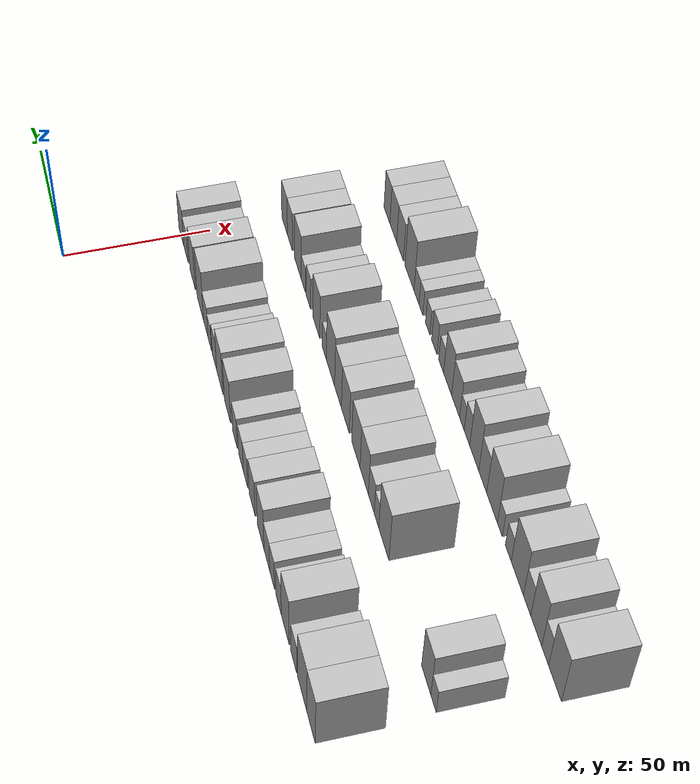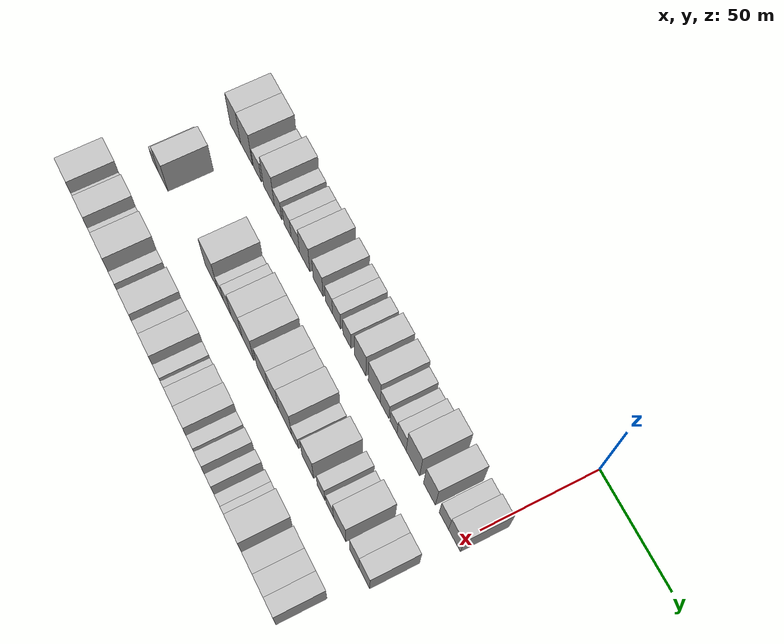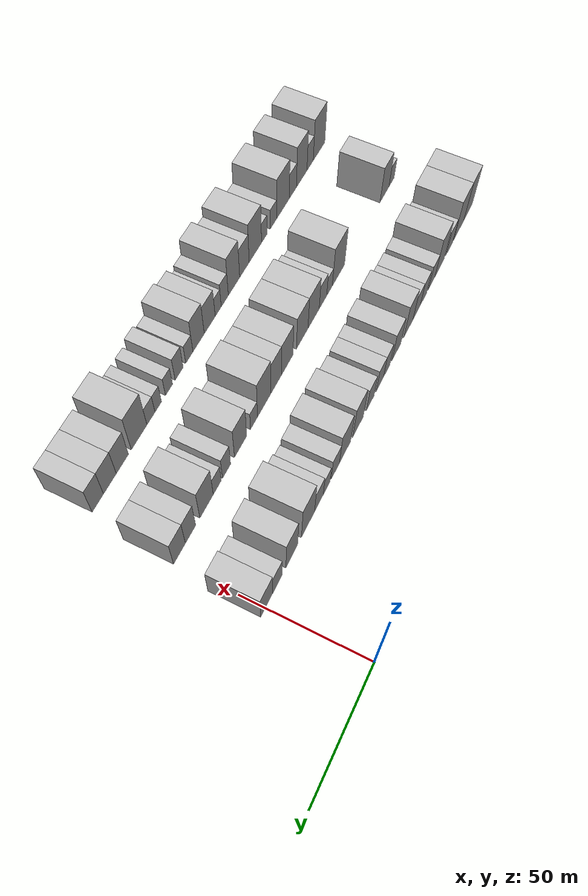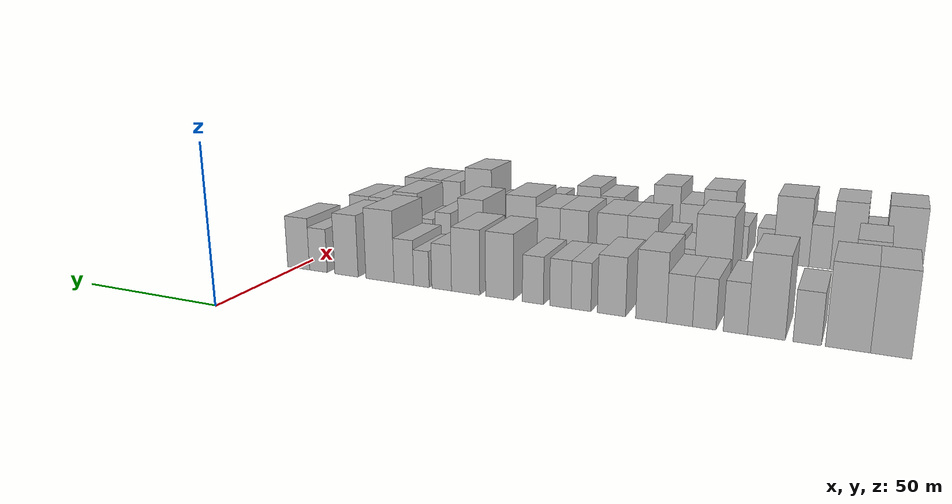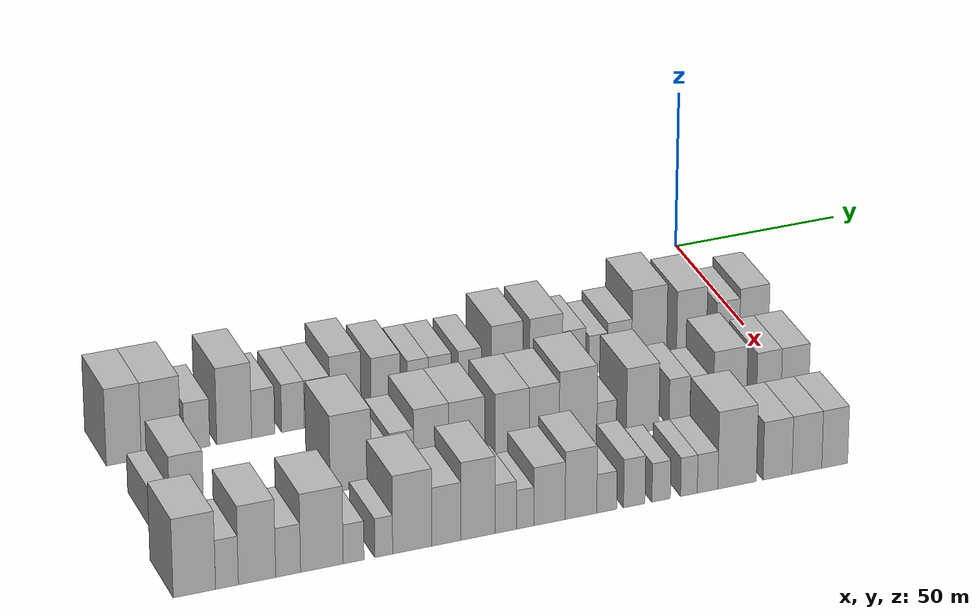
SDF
<sdf version="1.6">
 <world name="default">
  <model name="building_21">
   <static>1</static>
   <pose>50.0000 -187.3796 0 0.000000 0.000000 0.000000</pose>
   <link name="link">
    <pose>0 0 12.00 0 0 0</pose>
    <collision name="collision"><geometry><box><size>20.0000 9.9799 24.0000</size></box></geometry></collision>
    <visual name="visual">
     <cast_shadows>0</cast_shadows>
     <geometry><box><size>20.0000 9.9799 24.0000</size></box></geometry>
     <material>
      <script>
       <uri>model://HANNAS_wall/materials/scripts</uri>
       <uri>model://HANNAS_wall/materials/textures</uri>
       <name>vrc/HANNAS_wall</name>
      </script>
     </material>
    </visual>
   </link>
  </model>
  <model name="building_22">
   <static>1</static>
   <pose>50.0000 -176.7618 0 0.000000 0.000000 0.000000</pose>
   <link name="link">
    <pose>0 0 12.00 0 0 0</pose>
    <collision name="collision"><geometry><box><size>20.0000 11.2558 24.0000</size></box></geometry></collision>
    <visual name="visual">
     <cast_shadows>0</cast_shadows>
     <geometry><box><size>20.0000 11.2558 24.0000</size></box></geometry>
     <material>
      <script>
       <uri>model://HANNAS_wall/materials/scripts</uri>
       <uri>model://HANNAS_wall/materials/textures</uri>
       <name>vrc/HANNAS_wall</name>
      </script>
     </material>
    </visual>
   </link>
  </model>
  <model name="building_23">
   <static>1</static>
   <pose>50.0000 -166.4585 0 0.000000 0.000000 0.000000</pose>
   <link name="link">
    <pose>0 0 7.50 0 0 0</pose>
    <collision name="collision"><geometry><box><size>20.0000 7.3508 15.0000</size></box></geometry></collision>
    <visual name="visual">
     <cast_shadows>0</cast_shadows>
     <geometry><box><size>20.0000 7.3508 15.0000</size></box></geometry>
     <material>
      <script>
       <uri>model://HANNAS_wall/materials/scripts</uri>
       <uri>model://HANNAS_wall/materials/textures</uri>
       <name>vrc/HANNAS_wall</name>
      </script>
     </material>
    </visual>
   </link>
  </model>
  <model name="building_24">
   <static>1</static>
   <pose>50.0000 -155.7523 0 0.000000 0.000000 0.000000</pose>
   <link name="link">
    <pose>0 0 12.00 0 0 0</pose>
    <collision name="collision"><geometry><box><size>20.0000 10.0615 24.0000</size></box></geometry></collision>
    <visual name="visual">
     <cast_shadows>0</cast_shadows>
     <geometry><box><size>20.0000 10.0615 24.0000</size></box></geometry>
     <material>
      <script>
       <uri>model://HANNAS_wall/materials/scripts</uri>
       <uri>model://HANNAS_wall/materials/textures</uri>
       <name>vrc/HANNAS_wall</name>
      </script>
     </material>
    </visual>
   </link>
  </model>
  <model name="building_25">
   <static>1</static>
   <pose>50.0000 -147.3862 0 0.000000 0.000000 0.000000</pose>
   <link name="link">
    <pose>0 0 7.50 0 0 0</pose>
    <collision name="collision"><geometry><box><size>20.0000 6.6707 15.0000</size></box></geometry></collision>
    <visual name="visual">
     <cast_shadows>0</cast_shadows>
     <geometry><box><size>20.0000 6.6707 15.0000</size></box></geometry>
     <material>
      <script>
       <uri>model://HANNAS_wall/materials/scripts</uri>
       <uri>model://HANNAS_wall/materials/textures</uri>
       <name>vrc/HANNAS_wall</name>
      </script>
     </material>
    </visual>
   </link>
  </model>
  <model name="building_26">
   <static>1</static>
   <pose>50.0000 -138.7556 0 0.000000 0.000000 0.000000</pose>
   <link name="link">
    <pose>0 0 7.50 0 0 0</pose>
    <collision name="collision"><geometry><box><size>20.0000 6.5905 15.0000</size></box></geometry></collision>
    <visual name="visual">
     <cast_shadows>0</cast_shadows>
     <geometry><box><size>20.0000 6.5905 15.0000</size></box></geometry>
     <material>
      <script>
       <uri>model://HANNAS_wall/materials/scripts</uri>
       <uri>model://HANNAS_wall/materials/textures</uri>
       <name>vrc/HANNAS_wall</name>
      </script>
     </material>
    </visual>
   </link>
  </model>
  <model name="building_27">
   <static>1</static>
   <pose>50.0000 -131.7457 0 0.000000 0.000000 0.000000</pose>
   <link name="link">
    <pose>0 0 7.50 0 0 0</pose>
    <collision name="collision"><geometry><box><size>20.0000 7.4293 15.0000</size></box></geometry></collision>
    <visual name="visual">
     <cast_shadows>0</cast_shadows>
     <geometry><box><size>20.0000 7.4293 15.0000</size></box></geometry>
     <material>
      <script>
       <uri>model://HANNAS_wall/materials/scripts</uri>
       <uri>model://HANNAS_wall/materials/textures</uri>
       <name>vrc/HANNAS_wall</name>
      </script>
     </material>
    </visual>
   </link>
  </model>
  <model name="building_28">
   <static>1</static>
   <pose>50.0000 -123.4774 0 0.000000 0.000000 0.000000</pose>
   <link name="link">
    <pose>0 0 10.50 0 0 0</pose>
    <collision name="collision"><geometry><box><size>20.0000 9.1073 21.0000</size></box></geometry></collision>
    <visual name="visual">
     <cast_shadows>0</cast_shadows>
     <geometry><box><size>20.0000 9.1073 21.0000</size></box></geometry>
     <material>
      <script>
       <uri>model://HANNAS_wall/materials/scripts</uri>
       <uri>model://HANNAS_wall/materials/textures</uri>
       <name>vrc/HANNAS_wall</name>
      </script>
     </material>
    </visual>
   </link>
  </model>
  <model name="building_29">
   <static>1</static>
   <pose>50.0000 -111.6304 0 0.000000 0.000000 0.000000</pose>
   <link name="link">
    <pose>0 0 9.00 0 0 0</pose>
    <collision name="collision"><geometry><box><size>20.0000 8.5869 18.0000</size></box></geometry></collision>
    <visual name="visual">
     <cast_shadows>0</cast_shadows>
     <geometry><box><size>20.0000 8.5869 18.0000</size></box></geometry>
     <material>
      <script>
       <uri>model://HANNAS_wall/materials/scripts</uri>
       <uri>model://HANNAS_wall/materials/textures</uri>
       <name>vrc/HANNAS_wall</name>
      </script>
     </material>
    </visual>
   </link>
  </model>
  <model name="building_30">
   <static>1</static>
   <pose>50.0000 -102.2345 0 0.000000 0.000000 0.000000</pose>
   <link name="link">
    <pose>0 0 7.50 0 0 0</pose>
    <collision name="collision"><geometry><box><size>20.0000 6.2049 15.0000</size></box></geometry></collision>
    <visual name="visual">
     <cast_shadows>0</cast_shadows>
     <geometry><box><size>20.0000 6.2049 15.0000</size></box></geometry>
     <material>
      <script>
       <uri>model://HANNAS_wall/materials/scripts</uri>
       <uri>model://HANNAS_wall/materials/textures</uri>
       <name>vrc/HANNAS_wall</name>
      </script>
     </material>
    </visual>
   </link>
  </model>
  <model name="building_31">
   <static>1</static>
   <pose>50.0000 -95.7270 0 0.000000 0.000000 0.000000</pose>
   <link name="link">
    <pose>0 0 7.50 0 0 0</pose>
    <collision name="collision"><geometry><box><size>20.0000 6.8102 15.0000</size></box></geometry></collision>
    <visual name="visual">
     <cast_shadows>0</cast_shadows>
     <geometry><box><size>20.0000 6.8102 15.0000</size></box></geometry>
     <material>
      <script>
       <uri>model://HANNAS_wall/materials/scripts</uri>
       <uri>model://HANNAS_wall/materials/textures</uri>
       <name>vrc/HANNAS_wall</name>
      </script>
     </material>
    </visual>
   </link>
  </model>
  <model name="building_32">
   <static>1</static>
   <pose>50.0000 -86.8738 0 0.000000 0.000000 0.000000</pose>
   <link name="link">
    <pose>0 0 7.50 0 0 0</pose>
    <collision name="collision"><geometry><box><size>20.0000 6.8960 15.0000</size></box></geometry></collision>
    <visual name="visual">
     <cast_shadows>0</cast_shadows>
     <geometry><box><size>20.0000 6.8960 15.0000</size></box></geometry>
     <material>
      <script>
       <uri>model://HANNAS_wall/materials/scripts</uri>
       <uri>model://HANNAS_wall/materials/textures</uri>
       <name>vrc/HANNAS_wall</name>
      </script>
     </material>
    </visual>
   </link>
  </model>
  <model name="building_33">
   <static>1</static>
   <pose>50.0000 -75.7585 0 0.000000 0.000000 0.000000</pose>
   <link name="link">
    <pose>0 0 10.50 0 0 0</pose>
    <collision name="collision"><geometry><box><size>20.0000 9.3346 21.0000</size></box></geometry></collision>
    <visual name="visual">
     <cast_shadows>0</cast_shadows>
     <geometry><box><size>20.0000 9.3346 21.0000</size></box></geometry>
     <material>
      <script>
       <uri>model://HANNAS_wall/materials/scripts</uri>
       <uri>model://HANNAS_wall/materials/textures</uri>
       <name>vrc/HANNAS_wall</name>
      </script>
     </material>
    </visual>
   </link>
  </model>
  <model name="building_34">
   <static>1</static>
   <pose>50.0000 -64.1783 0 0.000000 0.000000 0.000000</pose>
   <link name="link">
    <pose>0 0 10.50 0 0 0</pose>
    <collision name="collision"><geometry><box><size>20.0000 9.8258 21.0000</size></box></geometry></collision>
    <visual name="visual">
     <cast_shadows>0</cast_shadows>
     <geometry><box><size>20.0000 9.8258 21.0000</size></box></geometry>
     <material>
      <script>
       <uri>model://HANNAS_wall/materials/scripts</uri>
       <uri>model://HANNAS_wall/materials/textures</uri>
       <name>vrc/HANNAS_wall</name>
      </script>
     </material>
    </visual>
   </link>
  </model>
  <model name="building_35">
   <static>1</static>
   <pose>50.0000 -55.7700 0 0.000000 0.000000 0.000000</pose>
   <link name="link">
    <pose>0 0 7.50 0 0 0</pose>
    <collision name="collision"><geometry><box><size>20.0000 6.9908 15.0000</size></box></geometry></collision>
    <visual name="visual">
     <cast_shadows>0</cast_shadows>
     <geometry><box><size>20.0000 6.9908 15.0000</size></box></geometry>
     <material>
      <script>
       <uri>model://HANNAS_wall/materials/scripts</uri>
       <uri>model://HANNAS_wall/materials/textures</uri>
       <name>vrc/HANNAS_wall</name>
      </script>
     </material>
    </visual>
   </link>
  </model>
  <model name="building_36">
   <static>1</static>
   <pose>50.0000 -48.4692 0 0.000000 0.000000 0.000000</pose>
   <link name="link">
    <pose>0 0 6.00 0 0 0</pose>
    <collision name="collision"><geometry><box><size>20.0000 5.6107 12.0000</size></box></geometry></collision>
    <visual name="visual">
     <cast_shadows>0</cast_shadows>
     <geometry><box><size>20.0000 5.6107 12.0000</size></box></geometry>
     <material>
      <script>
       <uri>model://HANNAS_wall/materials/scripts</uri>
       <uri>model://HANNAS_wall/materials/textures</uri>
       <name>vrc/HANNAS_wall</name>
      </script>
     </material>
    </visual>
   </link>
  </model>
  <model name="building_37">
   <static>1</static>
   <pose>50.0000 -42.0538 0 0.000000 0.000000 0.000000</pose>
   <link name="link">
    <pose>0 0 7.50 0 0 0</pose>
    <collision name="collision"><geometry><box><size>20.0000 7.2201 15.0000</size></box></geometry></collision>
    <visual name="visual">
     <cast_shadows>0</cast_shadows>
     <geometry><box><size>20.0000 7.2201 15.0000</size></box></geometry>
     <material>
      <script>
       <uri>model://HANNAS_wall/materials/scripts</uri>
       <uri>model://HANNAS_wall/materials/textures</uri>
       <name>vrc/HANNAS_wall</name>
      </script>
     </material>
    </visual>
   </link>
  </model>
  <model name="building_38">
   <static>1</static>
   <pose>50.0000 -33.1357 0 0.000000 0.000000 0.000000</pose>
   <link name="link">
    <pose>0 0 12.00 0 0 0</pose>
    <collision name="collision"><geometry><box><size>20.0000 10.6160 24.0000</size></box></geometry></collision>
    <visual name="visual">
     <cast_shadows>0</cast_shadows>
     <geometry><box><size>20.0000 10.6160 24.0000</size></box></geometry>
     <material>
      <script>
       <uri>model://HANNAS_wall/materials/scripts</uri>
       <uri>model://HANNAS_wall/materials/textures</uri>
       <name>vrc/HANNAS_wall</name>
      </script>
     </material>
    </visual>
   </link>
  </model>
  <model name="building_39">
   <static>1</static>
   <pose>50.0000 -20.2615 0 0.000000 0.000000 0.000000</pose>
   <link name="link">
    <pose>0 0 10.50 0 0 0</pose>
    <collision name="collision"><geometry><box><size>20.0000 9.1324 21.0000</size></box></geometry></collision>
    <visual name="visual">
     <cast_shadows>0</cast_shadows>
     <geometry><box><size>20.0000 9.1324 21.0000</size></box></geometry>
     <material>
      <script>
       <uri>model://HANNAS_wall/materials/scripts</uri>
       <uri>model://HANNAS_wall/materials/textures</uri>
       <name>vrc/HANNAS_wall</name>
      </script>
     </material>
    </visual>
   </link>
  </model>
  <model name="building_40">
   <static>1</static>
   <pose>50.0000 -9.1540 0 0.000000 0.000000 0.000000</pose>
   <link name="link">
    <pose>0 0 7.50 0 0 0</pose>
    <collision name="collision"><geometry><box><size>20.0000 7.0825 15.0000</size></box></geometry></collision>
    <visual name="visual">
     <cast_shadows>0</cast_shadows>
     <geometry><box><size>20.0000 7.0825 15.0000</size></box></geometry>
     <material>
      <script>
       <uri>model://HANNAS_wall/materials/scripts</uri>
       <uri>model://HANNAS_wall/materials/textures</uri>
       <name>vrc/HANNAS_wall</name>
      </script>
     </material>
    </visual>
   </link>
  </model>
  <model name="building_41">
   <static>1</static>
   <pose>50.0000 -1.1363 0 0.000000 0.000000 0.000000</pose>
   <link name="link">
    <pose>0 0 9.00 0 0 0</pose>
    <collision name="collision"><geometry><box><size>20.0000 8.9529 18.0000</size></box></geometry></collision>
    <visual name="visual">
     <cast_shadows>0</cast_shadows>
     <geometry><box><size>20.0000 8.9529 18.0000</size></box></geometry>
     <material>
      <script>
       <uri>model://HANNAS_wall/materials/scripts</uri>
       <uri>model://HANNAS_wall/materials/textures</uri>
       <name>vrc/HANNAS_wall</name>
      </script>
     </material>
    </visual>
   </link>
  </model>
  <model name="building_102">
   <static>1</static>
   <pose>85.0000 -188.2477 0 0.000000 0.000000 0.000000</pose>
   <link name="link">
    <pose>0 0 6.00 0 0 0</pose>
    <collision name="collision"><geometry><box><size>20.0000 5.5359 12.0000</size></box></geometry></collision>
    <visual name="visual">
     <cast_shadows>0</cast_shadows>
     <geometry><box><size>20.0000 5.5359 12.0000</size></box></geometry>
     <material>
      <script>
       <uri>model://HANNAS_wall/materials/scripts</uri>
       <uri>model://HANNAS_wall/materials/textures</uri>
       <name>vrc/HANNAS_wall</name>
      </script>
     </material>
    </visual>
   </link>
  </model>
  <model name="building_103">
   <static>1</static>
   <pose>85.0000 -180.7118 0 0.000000 0.000000 0.000000</pose>
   <link name="link">
    <pose>0 0 10.50 0 0 0</pose>
    <collision name="collision"><geometry><box><size>20.0000 9.5358 21.0000</size></box></geometry></collision>
    <visual name="visual">
     <cast_shadows>0</cast_shadows>
     <geometry><box><size>20.0000 9.5358 21.0000</size></box></geometry>
     <material>
      <script>
       <uri>model://HANNAS_wall/materials/scripts</uri>
       <uri>model://HANNAS_wall/materials/textures</uri>
       <name>vrc/HANNAS_wall</name>
      </script>
     </material>
    </visual>
   </link>
  </model>
  <model name="building_104">
   <static>1</static>
   <pose>85.0000 -134.3318 0 0.000000 0.000000 0.000000</pose>
   <link name="link">
    <pose>0 0 12.00 0 0 0</pose>
    <collision name="collision"><geometry><box><size>20.0000 11.7414 24.0000</size></box></geometry></collision>
    <visual name="visual">
     <cast_shadows>0</cast_shadows>
     <geometry><box><size>20.0000 11.7414 24.0000</size></box></geometry>
     <material>
      <script>
       <uri>model://HANNAS_wall/materials/scripts</uri>
       <uri>model://HANNAS_wall/materials/textures</uri>
       <name>vrc/HANNAS_wall</name>
      </script>
     </material>
    </visual>
   </link>
  </model>
  <model name="building_105">
   <static>1</static>
   <pose>85.0000 -125.8375 0 0.000000 0.000000 0.000000</pose>
   <link name="link">
    <pose>0 0 6.00 0 0 0</pose>
    <collision name="collision"><geometry><box><size>20.0000 5.2472 12.0000</size></box></geometry></collision>
    <visual name="visual">
     <cast_shadows>0</cast_shadows>
     <geometry><box><size>20.0000 5.2472 12.0000</size></box></geometry>
     <material>
      <script>
       <uri>model://HANNAS_wall/materials/scripts</uri>
       <uri>model://HANNAS_wall/materials/textures</uri>
       <name>vrc/HANNAS_wall</name>
      </script>
     </material>
    </visual>
   </link>
  </model>
  <model name="building_106">
   <static>1</static>
   <pose>85.0000 -119.7332 0 0.000000 0.000000 0.000000</pose>
   <link name="link">
    <pose>0 0 7.50 0 0 0</pose>
    <collision name="collision"><geometry><box><size>20.0000 6.9613 15.0000</size></box></geometry></collision>
    <visual name="visual">
     <cast_shadows>0</cast_shadows>
     <geometry><box><size>20.0000 6.9613 15.0000</size></box></geometry>
     <material>
      <script>
       <uri>model://HANNAS_wall/materials/scripts</uri>
       <uri>model://HANNAS_wall/materials/textures</uri>
       <name>vrc/HANNAS_wall</name>
      </script>
     </material>
    </visual>
   </link>
  </model>
  <model name="building_107">
   <static>1</static>
   <pose>85.0000 -111.1556 0 0.000000 0.000000 0.000000</pose>
   <link name="link">
    <pose>0 0 10.50 0 0 0</pose>
    <collision name="collision"><geometry><box><size>20.0000 10.1939 21.0000</size></box></geometry></collision>
    <visual name="visual">
     <cast_shadows>0</cast_shadows>
     <geometry><box><size>20.0000 10.1939 21.0000</size></box></geometry>
     <material>
      <script>
       <uri>model://HANNAS_wall/materials/scripts</uri>
       <uri>model://HANNAS_wall/materials/textures</uri>
       <name>vrc/HANNAS_wall</name>
      </script>
     </material>
    </visual>
   </link>
  </model>
  <model name="building_108">
   <static>1</static>
   <pose>85.0000 -100.9041 0 0.000000 0.000000 0.000000</pose>
   <link name="link">
    <pose>0 0 10.50 0 0 0</pose>
    <collision name="collision"><geometry><box><size>20.0000 10.3092 21.0000</size></box></geometry></collision>
    <visual name="visual">
     <cast_shadows>0</cast_shadows>
     <geometry><box><size>20.0000 10.3092 21.0000</size></box></geometry>
     <material>
      <script>
       <uri>model://HANNAS_wall/materials/scripts</uri>
       <uri>model://HANNAS_wall/materials/textures</uri>
       <name>vrc/HANNAS_wall</name>
      </script>
     </material>
    </visual>
   </link>
  </model>
  <model name="building_109">
   <static>1</static>
   <pose>85.0000 -87.7513 0 0.000000 0.000000 0.000000</pose>
   <link name="link">
    <pose>0 0 10.50 0 0 0</pose>
    <collision name="collision"><geometry><box><size>20.0000 9.9963 21.0000</size></box></geometry></collision>
    <visual name="visual">
     <cast_shadows>0</cast_shadows>
     <geometry><box><size>20.0000 9.9963 21.0000</size></box></geometry>
     <material>
      <script>
       <uri>model://HANNAS_wall/materials/scripts</uri>
       <uri>model://HANNAS_wall/materials/textures</uri>
       <name>vrc/HANNAS_wall</name>
      </script>
     </material>
    </visual>
   </link>
  </model>
  <model name="building_110">
   <static>1</static>
   <pose>85.0000 -78.3514 0 0.000000 0.000000 0.000000</pose>
   <link name="link">
    <pose>0 0 10.50 0 0 0</pose>
    <collision name="collision"><geometry><box><size>20.0000 8.8035 21.0000</size></box></geometry></collision>
    <visual name="visual">
     <cast_shadows>0</cast_shadows>
     <geometry><box><size>20.0000 8.8035 21.0000</size></box></geometry>
     <material>
      <script>
       <uri>model://HANNAS_wall/materials/scripts</uri>
       <uri>model://HANNAS_wall/materials/textures</uri>
       <name>vrc/HANNAS_wall</name>
      </script>
     </material>
    </visual>
   </link>
  </model>
  <model name="building_111">
   <static>1</static>
   <pose>85.0000 -68.4081 0 0.000000 0.000000 0.000000</pose>
   <link name="link">
    <pose>0 0 12.00 0 0 0</pose>
    <collision name="collision"><geometry><box><size>20.0000 11.0830 24.0000</size></box></geometry></collision>
    <visual name="visual">
     <cast_shadows>0</cast_shadows>
     <geometry><box><size>20.0000 11.0830 24.0000</size></box></geometry>
     <material>
      <script>
       <uri>model://HANNAS_wall/materials/scripts</uri>
       <uri>model://HANNAS_wall/materials/textures</uri>
       <name>vrc/HANNAS_wall</name>
      </script>
     </material>
    </visual>
   </link>
  </model>
  <model name="building_112">
   <static>1</static>
   <pose>85.0000 -60.0116 0 0.000000 0.000000 0.000000</pose>
   <link name="link">
    <pose>0 0 6.00 0 0 0</pose>
    <collision name="collision"><geometry><box><size>20.0000 5.7101 12.0000</size></box></geometry></collision>
    <visual name="visual">
     <cast_shadows>0</cast_shadows>
     <geometry><box><size>20.0000 5.7101 12.0000</size></box></geometry>
     <material>
      <script>
       <uri>model://HANNAS_wall/materials/scripts</uri>
       <uri>model://HANNAS_wall/materials/textures</uri>
       <name>vrc/HANNAS_wall</name>
      </script>
     </material>
    </visual>
   </link>
  </model>
  <model name="building_113">
   <static>1</static>
   <pose>85.0000 -49.3390 0 0.000000 0.000000 0.000000</pose>
   <link name="link">
    <pose>0 0 10.50 0 0 0</pose>
    <collision name="collision"><geometry><box><size>20.0000 9.6350 21.0000</size></box></geometry></collision>
    <visual name="visual">
     <cast_shadows>0</cast_shadows>
     <geometry><box><size>20.0000 9.6350 21.0000</size></box></geometry>
     <material>
      <script>
       <uri>model://HANNAS_wall/materials/scripts</uri>
       <uri>model://HANNAS_wall/materials/textures</uri>
       <name>vrc/HANNAS_wall</name>
      </script>
     </material>
    </visual>
   </link>
  </model>
  <model name="building_114">
   <static>1</static>
   <pose>85.0000 -38.4212 0 0.000000 0.000000 0.000000</pose>
   <link name="link">
    <pose>0 0 7.50 0 0 0</pose>
    <collision name="collision"><geometry><box><size>20.0000 6.2008 15.0000</size></box></geometry></collision>
    <visual name="visual">
     <cast_shadows>0</cast_shadows>
     <geometry><box><size>20.0000 6.2008 15.0000</size></box></geometry>
     <material>
      <script>
       <uri>model://HANNAS_wall/materials/scripts</uri>
       <uri>model://HANNAS_wall/materials/textures</uri>
       <name>vrc/HANNAS_wall</name>
      </script>
     </material>
    </visual>
   </link>
  </model>
  <model name="building_115">
   <static>1</static>
   <pose>85.0000 -31.3318 0 0.000000 0.000000 0.000000</pose>
   <link name="link">
    <pose>0 0 6.00 0 0 0</pose>
    <collision name="collision"><geometry><box><size>20.0000 5.9780 12.0000</size></box></geometry></collision>
    <visual name="visual">
     <cast_shadows>0</cast_shadows>
     <geometry><box><size>20.0000 5.9780 12.0000</size></box></geometry>
     <material>
      <script>
       <uri>model://HANNAS_wall/materials/scripts</uri>
       <uri>model://HANNAS_wall/materials/textures</uri>
       <name>vrc/HANNAS_wall</name>
      </script>
     </material>
    </visual>
   </link>
  </model>
  <model name="building_116">
   <static>1</static>
   <pose>85.0000 -23.3806 0 0.000000 0.000000 0.000000</pose>
   <link name="link">
    <pose>0 0 10.50 0 0 0</pose>
    <collision name="collision"><geometry><box><size>20.0000 9.9243 21.0000</size></box></geometry></collision>
    <visual name="visual">
     <cast_shadows>0</cast_shadows>
     <geometry><box><size>20.0000 9.9243 21.0000</size></box></geometry>
     <material>
      <script>
       <uri>model://HANNAS_wall/materials/scripts</uri>
       <uri>model://HANNAS_wall/materials/textures</uri>
       <name>vrc/HANNAS_wall</name>
      </script>
     </material>
    </visual>
   </link>
  </model>
  <model name="building_117">
   <static>1</static>
   <pose>85.0000 -11.7263 0 0.000000 0.000000 0.000000</pose>
   <link name="link">
    <pose>0 0 9.00 0 0 0</pose>
    <collision name="collision"><geometry><box><size>20.0000 7.3843 18.0000</size></box></geometry></collision>
    <visual name="visual">
     <cast_shadows>0</cast_shadows>
     <geometry><box><size>20.0000 7.3843 18.0000</size></box></geometry>
     <material>
      <script>
       <uri>model://HANNAS_wall/materials/scripts</uri>
       <uri>model://HANNAS_wall/materials/textures</uri>
       <name>vrc/HANNAS_wall</name>
      </script>
     </material>
    </visual>
   </link>
  </model>
  <model name="building_118">
   <static>1</static>
   <pose>85.0000 -3.8504 0 0.000000 0.000000 0.000000</pose>
   <link name="link">
    <pose>0 0 9.00 0 0 0</pose>
    <collision name="collision"><geometry><box><size>20.0000 8.3675 18.0000</size></box></geometry></collision>
    <visual name="visual">
     <cast_shadows>0</cast_shadows>
     <geometry><box><size>20.0000 8.3675 18.0000</size></box></geometry>
     <material>
      <script>
       <uri>model://HANNAS_wall/materials/scripts</uri>
       <uri>model://HANNAS_wall/materials/textures</uri>
       <name>vrc/HANNAS_wall</name>
      </script>
     </material>
    </visual>
   </link>
  </model>
  <model name="building_181">
   <static>1</static>
   <pose>120.0000 -190.0459 0 0.000000 0.000000 0.000000</pose>
   <link name="link">
    <pose>0 0 12.00 0 0 0</pose>
    <collision name="collision"><geometry><box><size>20.0000 11.6481 24.0000</size></box></geometry></collision>
    <visual name="visual">
     <cast_shadows>0</cast_shadows>
     <geometry><box><size>20.0000 11.6481 24.0000</size></box></geometry>
     <material>
      <script>
       <uri>model://HANNAS_wall/materials/scripts</uri>
       <uri>model://HANNAS_wall/materials/textures</uri>
       <name>vrc/HANNAS_wall</name>
      </script>
     </material>
    </visual>
   </link>
  </model>
  <model name="building_182">
   <static>1</static>
   <pose>120.0000 -181.0789 0 0.000000 0.000000 0.000000</pose>
   <link name="link">
    <pose>0 0 7.50 0 0 0</pose>
    <collision name="collision"><geometry><box><size>20.0000 6.2858 15.0000</size></box></geometry></collision>
    <visual name="visual">
     <cast_shadows>0</cast_shadows>
     <geometry><box><size>20.0000 6.2858 15.0000</size></box></geometry>
     <material>
      <script>
       <uri>model://HANNAS_wall/materials/scripts</uri>
       <uri>model://HANNAS_wall/materials/textures</uri>
       <name>vrc/HANNAS_wall</name>
      </script>
     </material>
    </visual>
   </link>
  </model>
  <model name="building_183">
   <static>1</static>
   <pose>120.0000 -172.7791 0 0.000000 0.000000 0.000000</pose>
   <link name="link">
    <pose>0 0 12.00 0 0 0</pose>
    <collision name="collision"><geometry><box><size>20.0000 10.3139 24.0000</size></box></geometry></collision>
    <visual name="visual">
     <cast_shadows>0</cast_shadows>
     <geometry><box><size>20.0000 10.3139 24.0000</size></box></geometry>
     <material>
      <script>
       <uri>model://HANNAS_wall/materials/scripts</uri>
       <uri>model://HANNAS_wall/materials/textures</uri>
       <name>vrc/HANNAS_wall</name>
      </script>
     </material>
    </visual>
   </link>
  </model>
  <model name="building_184">
   <static>1</static>
   <pose>120.0000 -164.1642 0 0.000000 0.000000 0.000000</pose>
   <link name="link">
    <pose>0 0 7.50 0 0 0</pose>
    <collision name="collision"><geometry><box><size>20.0000 6.9159 15.0000</size></box></geometry></collision>
    <visual name="visual">
     <cast_shadows>0</cast_shadows>
     <geometry><box><size>20.0000 6.9159 15.0000</size></box></geometry>
     <material>
      <script>
       <uri>model://HANNAS_wall/materials/scripts</uri>
       <uri>model://HANNAS_wall/materials/textures</uri>
       <name>vrc/HANNAS_wall</name>
      </script>
     </material>
    </visual>
   </link>
  </model>
  <model name="building_185">
   <static>1</static>
   <pose>120.0000 -154.7646 0 0.000000 0.000000 0.000000</pose>
   <link name="link">
    <pose>0 0 12.00 0 0 0</pose>
    <collision name="collision"><geometry><box><size>20.0000 11.8833 24.0000</size></box></geometry></collision>
    <visual name="visual">
     <cast_shadows>0</cast_shadows>
     <geometry><box><size>20.0000 11.8833 24.0000</size></box></geometry>
     <material>
      <script>
       <uri>model://HANNAS_wall/materials/scripts</uri>
       <uri>model://HANNAS_wall/materials/textures</uri>
       <name>vrc/HANNAS_wall</name>
      </script>
     </material>
    </visual>
   </link>
  </model>
  <model name="building_186">
   <static>1</static>
   <pose>120.0000 -145.9042 0 0.000000 0.000000 0.000000</pose>
   <link name="link">
    <pose>0 0 6.00 0 0 0</pose>
    <collision name="collision"><geometry><box><size>20.0000 5.8375 12.0000</size></box></geometry></collision>
    <visual name="visual">
     <cast_shadows>0</cast_shadows>
     <geometry><box><size>20.0000 5.8375 12.0000</size></box></geometry>
     <material>
      <script>
       <uri>model://HANNAS_wall/materials/scripts</uri>
       <uri>model://HANNAS_wall/materials/textures</uri>
       <name>vrc/HANNAS_wall</name>
      </script>
     </material>
    </visual>
   </link>
  </model>
  <model name="building_187">
   <static>1</static>
   <pose>120.0000 -137.4775 0 0.000000 0.000000 0.000000</pose>
   <link name="link">
    <pose>0 0 6.00 0 0 0</pose>
    <collision name="collision"><geometry><box><size>20.0000 5.0158 12.0000</size></box></geometry></collision>
    <visual name="visual">
     <cast_shadows>0</cast_shadows>
     <geometry><box><size>20.0000 5.0158 12.0000</size></box></geometry>
     <material>
      <script>
       <uri>model://HANNAS_wall/materials/scripts</uri>
       <uri>model://HANNAS_wall/materials/textures</uri>
       <name>vrc/HANNAS_wall</name>
      </script>
     </material>
    </visual>
   </link>
  </model>
  <model name="building_188">
   <static>1</static>
   <pose>120.0000 -129.4453 0 0.000000 0.000000 0.000000</pose>
   <link name="link">
    <pose>0 0 12.00 0 0 0</pose>
    <collision name="collision"><geometry><box><size>20.0000 11.0486 24.0000</size></box></geometry></collision>
    <visual name="visual">
     <cast_shadows>0</cast_shadows>
     <geometry><box><size>20.0000 11.0486 24.0000</size></box></geometry>
     <material>
      <script>
       <uri>model://HANNAS_wall/materials/scripts</uri>
       <uri>model://HANNAS_wall/materials/textures</uri>
       <name>vrc/HANNAS_wall</name>
      </script>
     </material>
    </visual>
   </link>
  </model>
  <model name="building_189">
   <static>1</static>
   <pose>120.0000 -119.7911 0 0.000000 0.000000 0.000000</pose>
   <link name="link">
    <pose>0 0 9.00 0 0 0</pose>
    <collision name="collision"><geometry><box><size>20.0000 8.2597 18.0000</size></box></geometry></collision>
    <visual name="visual">
     <cast_shadows>0</cast_shadows>
     <geometry><box><size>20.0000 8.2597 18.0000</size></box></geometry>
     <material>
      <script>
       <uri>model://HANNAS_wall/materials/scripts</uri>
       <uri>model://HANNAS_wall/materials/textures</uri>
       <name>vrc/HANNAS_wall</name>
      </script>
     </material>
    </visual>
   </link>
  </model>
  <model name="building_190">
   <static>1</static>
   <pose>120.0000 -110.7883 0 0.000000 0.000000 0.000000</pose>
   <link name="link">
    <pose>0 0 12.00 0 0 0</pose>
    <collision name="collision"><geometry><box><size>20.0000 9.7460 24.0000</size></box></geometry></collision>
    <visual name="visual">
     <cast_shadows>0</cast_shadows>
     <geometry><box><size>20.0000 9.7460 24.0000</size></box></geometry>
     <material>
      <script>
       <uri>model://HANNAS_wall/materials/scripts</uri>
       <uri>model://HANNAS_wall/materials/textures</uri>
       <name>vrc/HANNAS_wall</name>
      </script>
     </material>
    </visual>
   </link>
  </model>
  <model name="building_191">
   <static>1</static>
   <pose>120.0000 -102.9105 0 0.000000 0.000000 0.000000</pose>
   <link name="link">
    <pose>0 0 7.50 0 0 0</pose>
    <collision name="collision"><geometry><box><size>20.0000 6.0096 15.0000</size></box></geometry></collision>
    <visual name="visual">
     <cast_shadows>0</cast_shadows>
     <geometry><box><size>20.0000 6.0096 15.0000</size></box></geometry>
     <material>
      <script>
       <uri>model://HANNAS_wall/materials/scripts</uri>
       <uri>model://HANNAS_wall/materials/textures</uri>
       <name>vrc/HANNAS_wall</name>
      </script>
     </material>
    </visual>
   </link>
  </model>
  <model name="building_192">
   <static>1</static>
   <pose>120.0000 -97.4113 0 0.000000 0.000000 0.000000</pose>
   <link name="link">
    <pose>0 0 6.00 0 0 0</pose>
    <collision name="collision"><geometry><box><size>20.0000 4.9888 12.0000</size></box></geometry></collision>
    <visual name="visual">
     <cast_shadows>0</cast_shadows>
     <geometry><box><size>20.0000 4.9888 12.0000</size></box></geometry>
     <material>
      <script>
       <uri>model://HANNAS_wall/materials/scripts</uri>
       <uri>model://HANNAS_wall/materials/textures</uri>
       <name>vrc/HANNAS_wall</name>
      </script>
     </material>
    </visual>
   </link>
  </model>
  <model name="building_193">
   <static>1</static>
   <pose>120.0000 -90.4435 0 0.000000 0.000000 0.000000</pose>
   <link name="link">
    <pose>0 0 9.00 0 0 0</pose>
    <collision name="collision"><geometry><box><size>20.0000 8.9466 18.0000</size></box></geometry></collision>
    <visual name="visual">
     <cast_shadows>0</cast_shadows>
     <geometry><box><size>20.0000 8.9466 18.0000</size></box></geometry>
     <material>
      <script>
       <uri>model://HANNAS_wall/materials/scripts</uri>
       <uri>model://HANNAS_wall/materials/textures</uri>
       <name>vrc/HANNAS_wall</name>
      </script>
     </material>
    </visual>
   </link>
  </model>
  <model name="building_194">
   <static>1</static>
   <pose>120.0000 -81.4097 0 0.000000 0.000000 0.000000</pose>
   <link name="link">
    <pose>0 0 10.50 0 0 0</pose>
    <collision name="collision"><geometry><box><size>20.0000 9.1211 21.0000</size></box></geometry></collision>
    <visual name="visual">
     <cast_shadows>0</cast_shadows>
     <geometry><box><size>20.0000 9.1211 21.0000</size></box></geometry>
     <material>
      <script>
       <uri>model://HANNAS_wall/materials/scripts</uri>
       <uri>model://HANNAS_wall/materials/textures</uri>
       <name>vrc/HANNAS_wall</name>
      </script>
     </material>
    </visual>
   </link>
  </model>
  <model name="building_195">
   <static>1</static>
   <pose>120.0000 -73.9884 0 0.000000 0.000000 0.000000</pose>
   <link name="link">
    <pose>0 0 6.00 0 0 0</pose>
    <collision name="collision"><geometry><box><size>20.0000 5.7214 12.0000</size></box></geometry></collision>
    <visual name="visual">
     <cast_shadows>0</cast_shadows>
     <geometry><box><size>20.0000 5.7214 12.0000</size></box></geometry>
     <material>
      <script>
       <uri>model://HANNAS_wall/materials/scripts</uri>
       <uri>model://HANNAS_wall/materials/textures</uri>
       <name>vrc/HANNAS_wall</name>
      </script>
     </material>
    </visual>
   </link>
  </model>
  <model name="building_196">
   <static>1</static>
   <pose>120.0000 -66.0168 0 0.000000 0.000000 0.000000</pose>
   <link name="link">
    <pose>0 0 7.50 0 0 0</pose>
    <collision name="collision"><geometry><box><size>20.0000 6.2218 15.0000</size></box></geometry></collision>
    <visual name="visual">
     <cast_shadows>0</cast_shadows>
     <geometry><box><size>20.0000 6.2218 15.0000</size></box></geometry>
     <material>
      <script>
       <uri>model://HANNAS_wall/materials/scripts</uri>
       <uri>model://HANNAS_wall/materials/textures</uri>
       <name>vrc/HANNAS_wall</name>
      </script>
     </material>
    </visual>
   </link>
  </model>
  <model name="building_197">
   <static>1</static>
   <pose>120.0000 -58.2336 0 0.000000 0.000000 0.000000</pose>
   <link name="link">
    <pose>0 0 6.00 0 0 0</pose>
    <collision name="collision"><geometry><box><size>20.0000 5.3448 12.0000</size></box></geometry></collision>
    <visual name="visual">
     <cast_shadows>0</cast_shadows>
     <geometry><box><size>20.0000 5.3448 12.0000</size></box></geometry>
     <material>
      <script>
       <uri>model://HANNAS_wall/materials/scripts</uri>
       <uri>model://HANNAS_wall/materials/textures</uri>
       <name>vrc/HANNAS_wall</name>
      </script>
     </material>
    </visual>
   </link>
  </model>
  <model name="building_198">
   <static>1</static>
   <pose>120.0000 -50.1354 0 0.000000 0.000000 0.000000</pose>
   <link name="link">
    <pose>0 0 6.00 0 0 0</pose>
    <collision name="collision"><geometry><box><size>20.0000 4.8516 12.0000</size></box></geometry></collision>
    <visual name="visual">
     <cast_shadows>0</cast_shadows>
     <geometry><box><size>20.0000 4.8516 12.0000</size></box></geometry>
     <material>
      <script>
       <uri>model://HANNAS_wall/materials/scripts</uri>
       <uri>model://HANNAS_wall/materials/textures</uri>
       <name>vrc/HANNAS_wall</name>
      </script>
     </material>
    </visual>
   </link>
  </model>
  <model name="building_199">
   <static>1</static>
   <pose>120.0000 -44.7224 0 0.000000 0.000000 0.000000</pose>
   <link name="link">
    <pose>0 0 6.00 0 0 0</pose>
    <collision name="collision"><geometry><box><size>20.0000 5.9743 12.0000</size></box></geometry></collision>
    <visual name="visual">
     <cast_shadows>0</cast_shadows>
     <geometry><box><size>20.0000 5.9743 12.0000</size></box></geometry>
     <material>
      <script>
       <uri>model://HANNAS_wall/materials/scripts</uri>
       <uri>model://HANNAS_wall/materials/textures</uri>
       <name>vrc/HANNAS_wall</name>
      </script>
     </material>
    </visual>
   </link>
  </model>
  <model name="building_200">
   <static>1</static>
   <pose>120.0000 -36.0864 0 0.000000 0.000000 0.000000</pose>
   <link name="link">
    <pose>0 0 12.00 0 0 0</pose>
    <collision name="collision"><geometry><box><size>20.0000 11.2978 24.0000</size></box></geometry></collision>
    <visual name="visual">
     <cast_shadows>0</cast_shadows>
     <geometry><box><size>20.0000 11.2978 24.0000</size></box></geometry>
     <material>
      <script>
       <uri>model://HANNAS_wall/materials/scripts</uri>
       <uri>model://HANNAS_wall/materials/textures</uri>
       <name>vrc/HANNAS_wall</name>
      </script>
     </material>
    </visual>
   </link>
  </model>
  <model name="building_201">
   <static>1</static>
   <pose>120.0000 -24.1664 0 0.000000 0.000000 0.000000</pose>
   <link name="link">
    <pose>0 0 9.00 0 0 0</pose>
    <collision name="collision"><geometry><box><size>20.0000 8.5422 18.0000</size></box></geometry></collision>
    <visual name="visual">
     <cast_shadows>0</cast_shadows>
     <geometry><box><size>20.0000 8.5422 18.0000</size></box></geometry>
     <material>
      <script>
       <uri>model://HANNAS_wall/materials/scripts</uri>
       <uri>model://HANNAS_wall/materials/textures</uri>
       <name>vrc/HANNAS_wall</name>
      </script>
     </material>
    </visual>
   </link>
  </model>
  <model name="building_202">
   <static>1</static>
   <pose>120.0000 -15.5056 0 0.000000 0.000000 0.000000</pose>
   <link name="link">
    <pose>0 0 9.00 0 0 0</pose>
    <collision name="collision"><geometry><box><size>20.0000 8.7792 18.0000</size></box></geometry></collision>
    <visual name="visual">
     <cast_shadows>0</cast_shadows>
     <geometry><box><size>20.0000 8.7792 18.0000</size></box></geometry>
     <material>
      <script>
       <uri>model://HANNAS_wall/materials/scripts</uri>
       <uri>model://HANNAS_wall/materials/textures</uri>
       <name>vrc/HANNAS_wall</name>
      </script>
     </material>
    </visual>
   </link>
  </model>
  <model name="building_203">
   <static>1</static>
   <pose>120.0000 -7.2792 0 0.000000 0.000000 0.000000</pose>
   <link name="link">
    <pose>0 0 9.00 0 0 0</pose>
    <collision name="collision"><geometry><box><size>20.0000 7.6736 18.0000</size></box></geometry></collision>
    <visual name="visual">
     <cast_shadows>0</cast_shadows>
     <geometry><box><size>20.0000 7.6736 18.0000</size></box></geometry>
     <material>
      <script>
       <uri>model://HANNAS_wall/materials/scripts</uri>
       <uri>model://HANNAS_wall/materials/textures</uri>
       <name>vrc/HANNAS_wall</name>
      </script>
     </material>
    </visual>
   </link>
  </model>
 </world>
</sdf>
